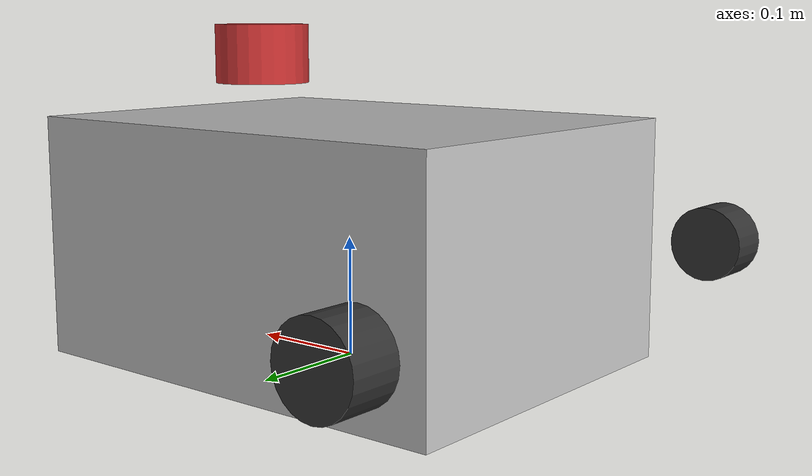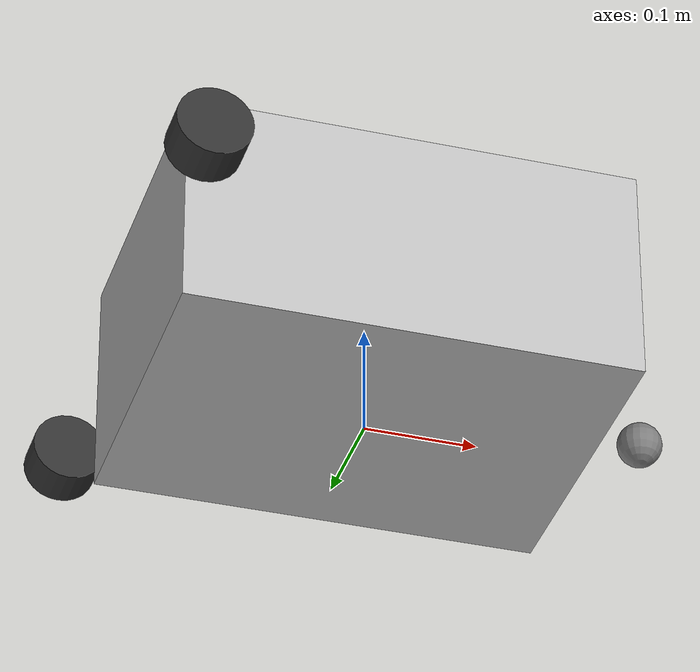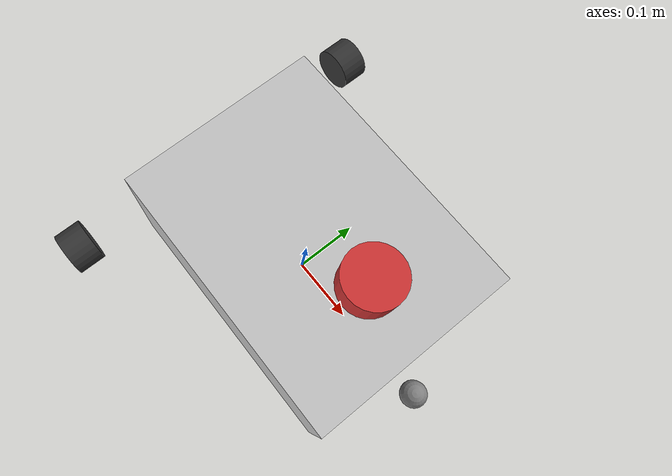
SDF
<?xml version="1.0"?>
<sdf version="1.9">
  <model name="portamail_robot">

    <!-- Base Link -->
    <link name="base_link">
      <pose>0 0 0.1 0 0 0</pose>
      <inertial>
        <mass>26.99</mass>
        <inertia>
          <ixx>0.619</ixx>
          <ixy>0</ixy>
          <ixz>0.006</ixz>
          <iyy>0.668</iyy>
          <iyz>0</iyz>
          <izz>0.983</izz>
        </inertia>
      </inertial>
      <visual name="base_visual">
        <geometry>
          <box>
            <size>0.4 0.3 0.2</size>
          </box>
        </geometry>
        <material>
          <ambient>0.75 0.75 0.75 1</ambient>
          <diffuse>0.75 0.75 0.75 1</diffuse>
        </material>
      </visual>
      <collision name="base_collision">
        <geometry>
          <box>
            <size>0.4 0.3 0.2</size>
          </box>
        </geometry>
      </collision>
    </link>

    <!-- Left Wheel -->
    <link name="left_wheel">
      <pose relative_to="base_link">-0.207 0.244 -0.016 1.5708 0 0</pose>
      <inertial>
        <mass>0.589</mass>
        <inertia>
          <ixx>0.00113</ixx>
          <iyy>0.00113</iyy>
          <izz>0.00220</izz>
          <ixy>0</ixy>
          <ixz>0</ixz>
          <iyz>0</iyz>
        </inertia>
      </inertial>
      <visual name="left_wheel_visual">
        <geometry>
          <cylinder>
            <radius>0.0325</radius>
            <length>0.04</length>
          </cylinder>
        </geometry>
        <material>
          <ambient>0.2 0.2 0.2 1</ambient>
          <diffuse>0.2 0.2 0.2 1</diffuse>
        </material>
      </visual>
      <collision name="left_wheel_collision">
        <geometry>
          <cylinder>
            <radius>0.0325</radius>
            <length>0.04</length>
          </cylinder>
        </geometry>
        <surface>
          <friction>
            <ode>
              <mu>1.0</mu>
              <mu2>1.0</mu2>
            </ode>
          </friction>
        </surface>
      </collision>
    </link>

    <!-- Right Wheel -->
    <link name="right_wheel">
      <pose relative_to="base_link">-0.207 -0.254 -0.016 1.5708 0 0</pose>
      <inertial>
        <mass>0.589</mass>
        <inertia>
          <ixx>0.00113</ixx>
          <iyy>0.00113</iyy>
          <izz>0.00220</izz>
          <ixy>0</ixy>
          <ixz>0</ixz>
          <iyz>0</iyz>
        </inertia>
      </inertial>
      <visual name="right_wheel_visual">
        <geometry>
          <cylinder>
            <radius>0.0325</radius>
            <length>0.04</length>
          </cylinder>
        </geometry>
        <material>
          <ambient>0.2 0.2 0.2 1</ambient>
          <diffuse>0.2 0.2 0.2 1</diffuse>
        </material>
      </visual>
      <collision name="right_wheel_collision">
        <geometry>
          <cylinder>
            <radius>0.0325</radius>
            <length>0.04</length>
          </cylinder>
        </geometry>
        <surface>
          <friction>
            <ode>
              <mu>1.0</mu>
              <mu2>1.0</mu2>
            </ode>
          </friction>
        </surface>
      </collision>
    </link>

    <!-- Caster Wheel -->
    <link name="caster_wheel">
      <pose relative_to="base_link">0.250 0 -0.07 0 0 0</pose>
      <inertial>
        <mass>0.066</mass>
        <inertia>
          <ixx>0.00003</ixx>
          <iyy>0.00003</iyy>
          <izz>0.00004</izz>
          <ixy>0</ixy>
          <ixz>0</ixz>
          <iyz>0</iyz>
        </inertia>
      </inertial>
      <visual name="caster_visual">
        <geometry>
          <sphere>
            <radius>0.02</radius>
          </sphere>
        </geometry>
        <material>
          <ambient>0.5 0.5 0.5 1</ambient>
          <diffuse>0.5 0.5 0.5 1</diffuse>
        </material>
      </visual>
      <collision name="caster_collision">
        <geometry>
          <sphere>
            <radius>0.02</radius>
          </sphere>
        </geometry>
        <surface>
          <friction>
            <ode>
              <mu>0.0</mu>
              <mu2>0.0</mu2>
            </ode>
          </friction>
        </surface>
      </collision>
    </link>

    <!-- Laser Link -->
    <link name="laser">
      <pose relative_to="base_link">0.1 0 0.15 0 0 0</pose>
      <inertial>
        <mass>0.125</mass>
        <inertia>
          <ixx>0.001</ixx>
          <iyy>0.001</iyy>
          <izz>0.001</izz>
          <ixy>0</ixy>
          <ixz>0</ixz>
          <iyz>0</iyz>
        </inertia>
      </inertial>
      <visual name="laser_visual">
        <geometry>
          <cylinder>
            <radius>0.04</radius>
            <length>0.05</length>
          </cylinder>
        </geometry>
        <material>
          <ambient>0.8 0.2 0.2 1</ambient>
          <diffuse>0.8 0.2 0.2 1</diffuse>
        </material>
      </visual>
      <collision name="laser_collision">
        <geometry>
          <cylinder>
            <radius>0.04</radius>
            <length>0.05</length>
          </cylinder>
        </geometry>
      </collision>

      <!-- GPU Lidar Sensor -->
      <sensor name="rplidar_sensor" type="gpu_lidar">
        <topic>/scan</topic>
        <update_rate>10</update_rate>
        <lidar>
          <scan>
            <horizontal>
              <samples>360</samples>
              <resolution>1</resolution>
              <min_angle>-3.14159</min_angle>
              <max_angle>3.14159</max_angle>
            </horizontal>
          </scan>
          <range>
            <min>0.15</min>
            <max>12.0</max>
            <resolution>0.01</resolution>
          </range>
          <noise>
            <type>gaussian</type>
            <mean>0.0</mean>
            <stddev>0.01</stddev>
          </noise>
        </lidar>
        <always_on>1</always_on>
        <visualize>true</visualize>
      </sensor>
    </link>

    <!-- Joints -->
    <joint name="left_wheel_joint" type="revolute">
      <parent>base_link</parent>
      <child>left_wheel</child>
      <axis>
        <xyz>0 0 1</xyz>
        <limit>
          <lower>-1e16</lower>
          <upper>1e16</upper>
        </limit>
      </axis>
    </joint>

    <joint name="right_wheel_joint" type="revolute">
      <parent>base_link</parent>
      <child>right_wheel</child>
      <axis>
        <xyz>0 0 1</xyz>
        <limit>
          <lower>-1e16</lower>
          <upper>1e16</upper>
        </limit>
      </axis>
    </joint>

    <joint name="caster_joint" type="fixed">
      <parent>base_link</parent>
      <child>caster_wheel</child>
    </joint>

    <joint name="laser_joint" type="fixed">
      <parent>base_link</parent>
      <child>laser</child>
    </joint>

    <!-- Differential Drive Plugin -->
    <plugin filename="gz-sim-diff-drive-system" name="gz::sim::systems::DiffDrive">
      <left_joint>left_wheel_joint</left_joint>
      <right_joint>right_wheel_joint</right_joint>
      <wheel_separation>0.498</wheel_separation>
      <wheel_radius>0.0325</wheel_radius>
      <odom_publish_frequency>50</odom_publish_frequency>
      <max_linear_acceleration>1.0</max_linear_acceleration>
      <max_angular_acceleration>2.0</max_angular_acceleration>
      <max_linear_velocity>0.89</max_linear_velocity>
      <max_angular_velocity>1.0</max_angular_velocity>
      <min_linear_velocity>-0.89</min_linear_velocity>
      <min_angular_velocity>-1.0</min_angular_velocity>
      <topic>/cmd_vel</topic>
      <odom_topic>/odom</odom_topic>
      <tf_topic>/tf</tf_topic>
      <frame_id>odom</frame_id>
      <child_frame_id>base_link</child_frame_id>
    </plugin>

    <!-- Pose Publisher (for TF) -->
    <plugin filename="gz-sim-pose-publisher-system" name="gz::sim::systems::PosePublisher">
      <publish_link_pose>true</publish_link_pose>
      <publish_sensor_pose>true</publish_sensor_pose>
      <publish_collision_pose>false</publish_collision_pose>
      <publish_visual_pose>false</publish_visual_pose>
      <publish_nested_model_pose>true</publish_nested_model_pose>
      <use_pose_vector_msg>true</use_pose_vector_msg>
      <update_frequency>50</update_frequency>
    </plugin>

  </model>
</sdf>
